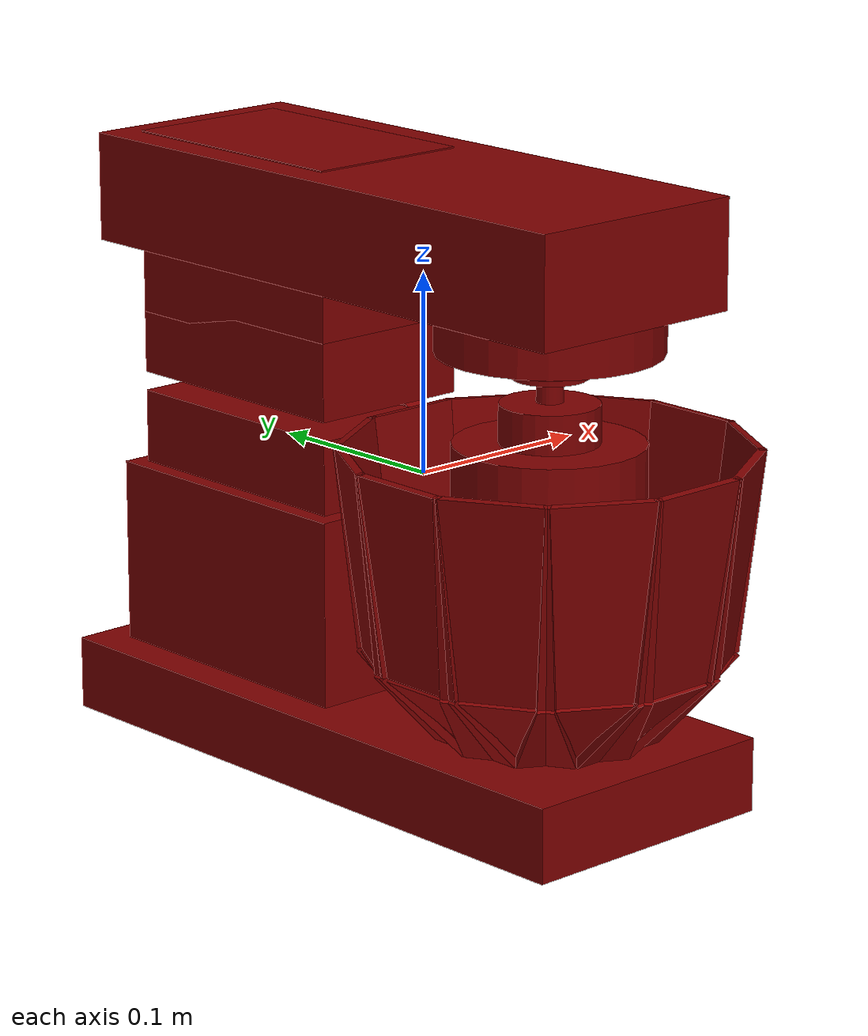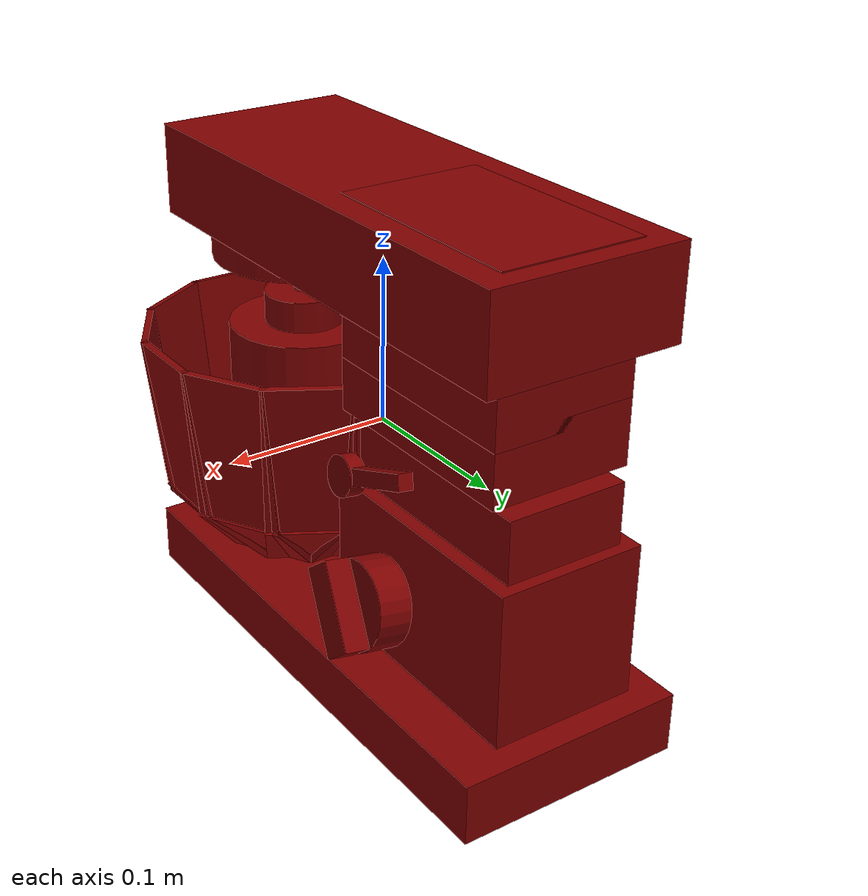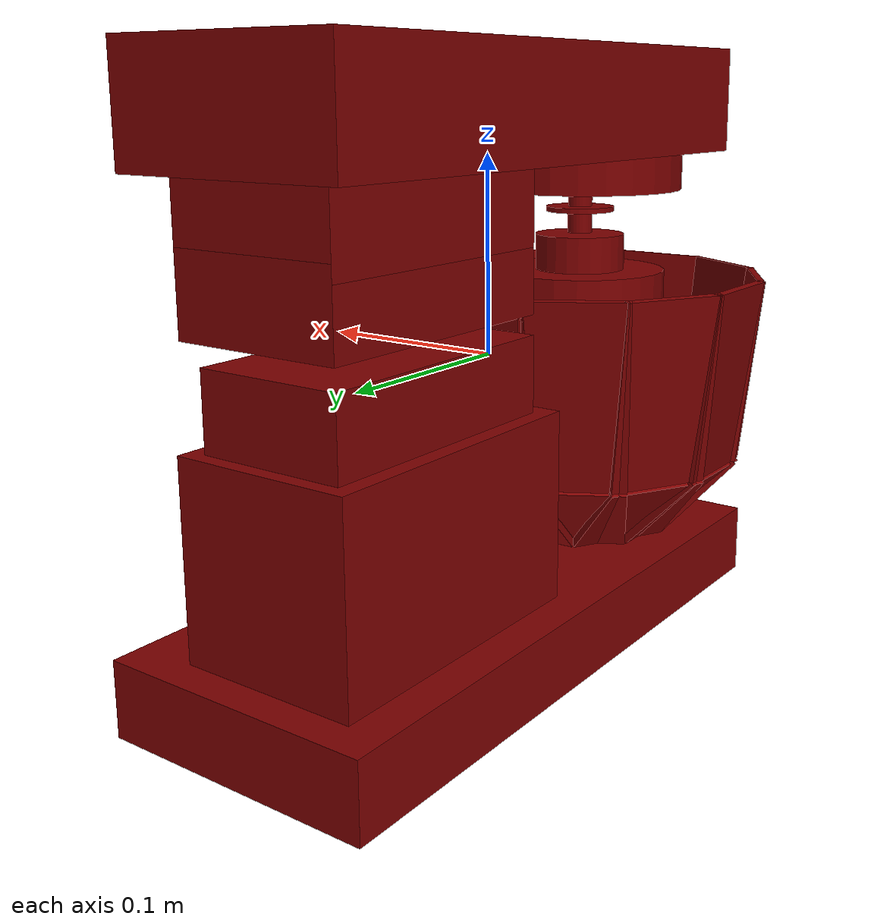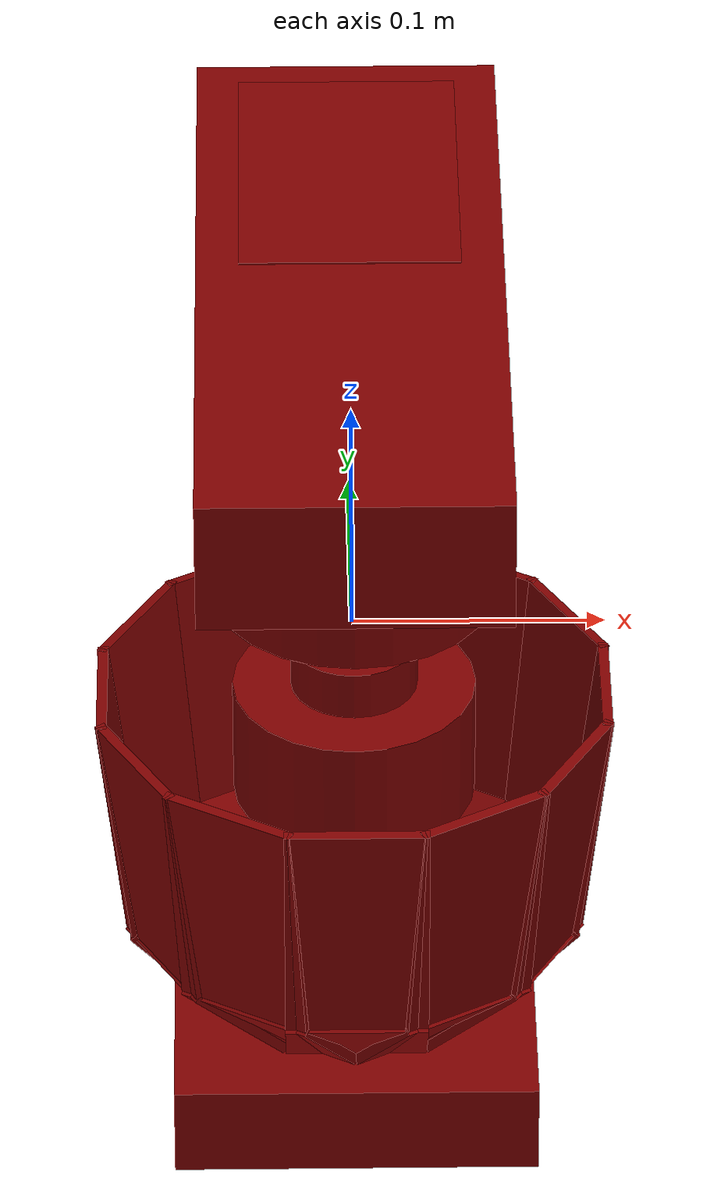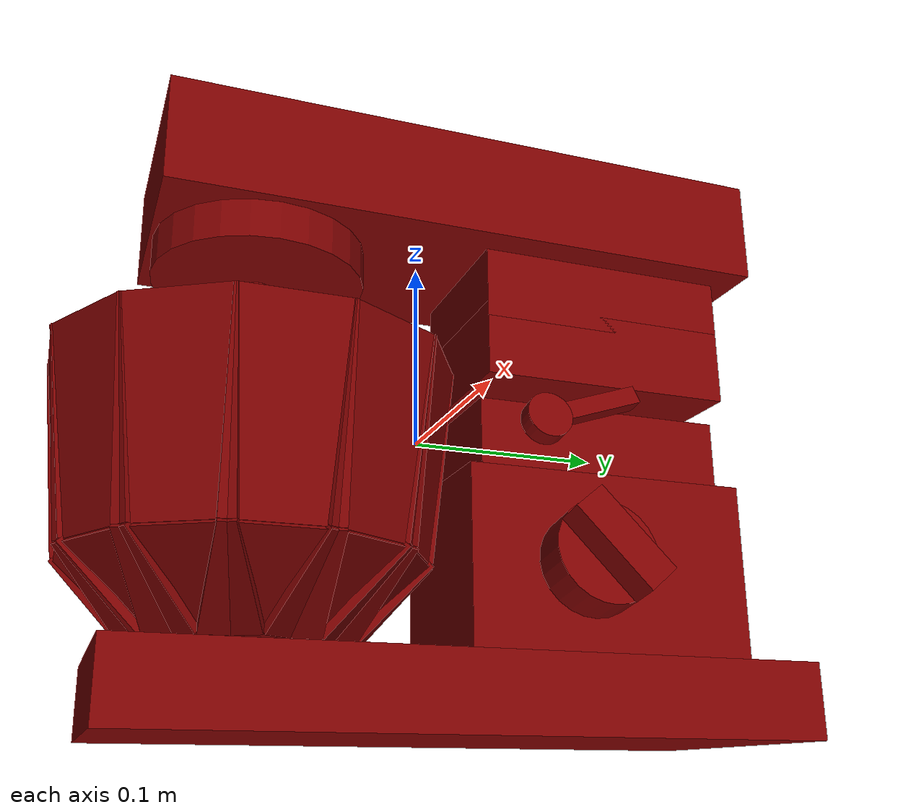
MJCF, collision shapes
<?xml version='1.0' encoding='UTF-8'?>
<mujoco model="model">
  <compiler angle="radian"/>
  <asset>
    <mesh file="visuals/Blender001.obj" name="Blender001_vis"/>
    <mesh file="visuals/Body001.obj" name="Body001_vis"/>
    <mesh file="visuals/Container001.obj" name="Container001_vis"/>
    <mesh file="visuals/Konb001.obj" name="Konb001_vis"/>
    <mesh file="visuals/Lever001.obj" name="Lever001_vis"/>
    <mesh file="visuals/Lid001.obj" name="Lid001_vis"/>
    <texture file="visuals/T_BC001.png" name="Body001_material" type="2d"/>
    <material name="Body001_material" rgba="1 1 1 1.0" texture="Body001_material" shininess="0.4472135901451111" specular="0.6"/>
    <texture file="visuals/T_BC001.png" name="Container001_material" type="2d"/>
    <material name="Container001_material" rgba="1 1 1 1.0" texture="Container001_material" shininess="0.4472135901451111" specular="0.8"/>
    <texture file="visuals/T_BC001.png" name="Konb001_material" type="2d"/>
    <material name="Konb001_material" rgba="1 1 1 1.0" texture="Konb001_material" shininess="0.4472135901451111" specular="0.8"/>
    <texture file="visuals/T_BC001.png" name="Lever001_material" type="2d"/>
    <material name="Lever001_material" rgba="1 1 1 1.0" texture="Lever001_material" shininess="0.4472135901451111" specular="0.8"/>
    <texture file="visuals/T_BC001.png" name="Lid001_material" type="2d"/>
    <material name="Lid001_material" rgba="1 1 1 1.0" texture="Lid001_material" shininess="0.4472135901451111" specular="0.3103448502657381"/>
    <texture file="visuals/T_BC001.png" name="Blender001_material" type="2d"/>
    <material name="Blender001_material" rgba="1 1 1 1.0" texture="Blender001_material" shininess="0.4472135901451111" specular="1"/>
  </asset>
  <default>
    <default class="visual">
      <geom conaffinity="0" contype="0" group="1" type="mesh"/>
    </default>
    <default class="collision">
      <geom group="0" rgba="0.5 0 0 0.5"/>
    </default>
    <default class="spawn">
      <geom group="0" rgba="1 1 1 0.5" contype="0" conaffinity="0"/>
      <site group="0" rgba="1 1 1 0.5"/>
    </default>
    <default class="region">
      <geom group="1" conaffinity="0" contype="0" rgba="0 1 0 0"/>
    </default>
  </default>
  <worldbody>
    <body>
      <body name="object">
        <geom mesh="Body001_vis" type="mesh" solimp="0.998 0.998 0.001" solref="0.001 1" density="100" friction="0.95 0.3 0.1" class="visual" material="Body001_material"/>
        <geom class="collision" type="box" pos="5.073845386505127e-06 0.013375680893659592 -0.13134357333183289" size="0.07056957483291626 0.16979755461215973 0.01855016127228737" quat="1.0 0.0 0.0 0.0"/>
        <geom class="collision" type="box" pos="-0.005887225735932589 0.09084387868642807 -0.06559009104967117" size="0.04578365013003349 0.07607658207416534 0.04703680798411369" quat="1.0 0.0 0.0 0.0"/>
        <geom class="collision" type="box" pos="-0.005887224804610014 0.09195831418037415 -0.00040517188608646393" size="0.037225399166345596 0.06769412755966187 0.019153527915477753" quat="1.0 0.0 0.0 0.0"/>
        <body name="Container001">
          <joint axis="0.0 0.0 1.0" pos="-7.450580596923828e-09 -0.08097703009843826 -0.04038115590810776" limited="true" name="Container001_joint" range="0.0 0.035" type="slide" damping="1" frictionloss="1" armature=".01" stiffness="0.05"/>
          <geom mesh="Container001_vis" type="mesh" solimp="0.998 0.998 0.001" solref="0.001 1" density="100" friction="0.95 0.3 0.1" class="visual" material="Container001_material"/>
          <geom class="collision" type="cylinder" pos="5.066394805908203e-06 -0.08725181967020035 -0.10817986726760864" size="0.0464482381939888 0.0017479010857641697" quat="7.549790126404332e-08 0.0 0.0 1.0"/>
          <geom class="collision" type="box" pos="5.073733063909458e-06 -0.15343552827835083 -0.0882730558514595" size="0.027358751744031906 0.0020164165180176497 0.027878670021891594" quat="6.998173773808958e-08 -2.8328244638942124e-08 -0.9269362092018127 -0.3752189874649048"/>
          <geom class="collision" type="box" pos="5.073733063909458e-06 -0.17774909734725952 -0.018456988036632538" size="0.027358751744031906 0.002016416285187006 0.04990223050117493" quat="7.536473134450716e-08 -4.482206605871397e-09 -0.9982361197471619 -0.05936862528324127"/>
          <geom class="collision" type="box" pos="-0.03308677673339844 -0.14456859230995178 -0.0882730558514595" size="0.027358751744031906 0.002016416285187006 0.027878668159246445" quat="0.09711387753486633 0.23990875482559204 0.8953516483306885 0.36243361234664917"/>
          <geom class="collision" type="box" pos="-0.04524356871843338 -0.16562476754188538 -0.018456988036632538" size="0.027358751744031906 0.002016416285187006 0.04990223050117493" quat="-0.015365572646260262 -0.2583625316619873 -0.9642220735549927 -0.05734538659453392"/>
          <geom class="collision" type="box" pos="-0.05731169134378433 -0.12034367024898529 -0.0882730558514595" size="0.027358751744031906 0.002016416285187006 0.027878666296601295" quat="0.18760931491851807 0.46346813440322876 0.8027503490447998 0.3249490261077881"/>
          <geom class="collision" type="box" pos="-0.07836788147687912 -0.13250046968460083 -0.018456995487213135" size="0.027358751744031906 0.002016416285187006 0.04990223050117493" quat="-0.02968408726155758 -0.4991180896759033 -0.8644978404045105 -0.05141449719667435"/>
          <geom class="collision" type="box" pos="-0.06617863476276398 -0.08725183457136154 -0.0882730558514595" size="0.027358751744031906 0.002016416285187006 0.027878666296601295" quat="0.2653197944164276 0.6554428935050964 0.6554428935050964 0.2653198540210724"/>
          <geom class="collision" type="box" pos="-0.09049221873283386 -0.08725183457136154 -0.018456988036632538" size="0.027358751744031906 0.0020164165180176497 0.04990223050117493" quat="0.041979771107435226 0.7058594822883606 0.7058596014976501 0.04197971895337105"/>
          <geom class="collision" type="box" pos="-0.057311706244945526 -0.0541599877178669 -0.0882730558514595" size="0.027358751744031906 0.002016416285187006 0.027878666296601295" quat="0.32494908571243286 0.8027502298355103 0.4634682834148407 0.1876094490289688"/>
          <geom class="collision" type="box" pos="-0.07836788892745972 -0.04200320318341255 -0.018456988036632538" size="0.027358751744031906 0.002016416285187006 0.04990223050117493" quat="0.05141449719667435 0.8644978404045105 0.4991181492805481 0.02968413010239601"/>
          <geom class="collision" type="box" pos="-0.03308679163455963 -0.029935061931610107 -0.0882730558514595" size="0.027358751744031906 0.0020164165180176497 0.027878668159246445" quat="0.3624334931373596 0.8953516483306885 0.239908829331398 0.09711384028196335"/>
          <geom class="collision" type="box" pos="-0.04524358734488487 -0.00887887179851532 -0.018456995487213135" size="0.027358751744031906 0.002016416285187006 0.04990223050117493" quat="0.05734540894627571 0.9642220735549927 0.2583625614643097 0.01536561269313097"/>
          <geom class="collision" type="box" pos="5.049063020123867e-06 -0.021068118512630463 -0.0882730558514595" size="0.027358751744031906 0.002016416285187006 0.027878666296601295" quat="0.37521877884864807 0.9269362688064575 5.358042187708634e-08 6.884591385869498e-08"/>
          <geom class="collision" type="box" pos="5.045391844760161e-06 0.0032454654574394226 -0.018456988036632538" size="0.027358751744031906 0.002016416285187006 0.04990223050117493" quat="0.05936868488788605 0.9982361197471619 7.276963742697262e-08 4.8116497453065676e-08"/>
          <geom class="collision" type="box" pos="0.033096909523010254 -0.029935050755739212 -0.0882730558514595" size="0.027358751744031906 0.0020164165180176497 0.027878668159246445" quat="0.3624334931373596 0.8953516483306885 -0.239908829331398 -0.09711384028196335"/>
          <geom class="collision" type="box" pos="0.0452537015080452 -0.008878879249095917 -0.018456988036632538" size="0.027358751744031906 0.002016416285187006 0.04990223050117493" quat="0.05734540894627571 0.9642220735549927 -0.2583625614643097 -0.015365613624453545"/>
          <geom class="collision" type="box" pos="0.057321831583976746 -0.054159972816705704 -0.0882730558514595" size="0.027358751744031906 0.002016416285187006 0.027878668159246445" quat="0.3249489367008209 0.8027502298355103 -0.46346840262413025 -0.18760946393013"/>
          <geom class="collision" type="box" pos="0.07837801426649094 -0.04200318083167076 -0.018456995487213135" size="0.027358751744031906 0.002016416285187006 0.04990223050117493" quat="0.05141449719667435 0.8644978404045105 -0.4991181492805481 -0.02968413010239601"/>
          <geom class="collision" type="box" pos="0.0661887675523758 -0.08725181221961975 -0.0882730558514595" size="0.027358751744031906 0.002016416285187006 0.027878666296601295" quat="0.2653197944164276 0.6554428935050964 -0.6554428935050964 -0.2653198540210724"/>
          <geom class="collision" type="box" pos="0.09050235152244568 -0.08725181221961975 -0.018456988036632538" size="0.027358751744031906 0.0020164165180176497 0.04990223050117493" quat="0.041979771107435226 0.7058594822883606 -0.7058596014976501 -0.04197971895337105"/>
          <geom class="collision" type="box" pos="0.057321835309267044 -0.1203436553478241 -0.0882730558514595" size="0.027358751744031906 0.002016416285187006 0.027878666296601295" quat="0.18760941922664642 0.4634682238101959 -0.802750289440155 -0.32494911551475525"/>
          <geom class="collision" type="box" pos="0.07837801426649094 -0.13250043988227844 -0.018456995487213135" size="0.027358751744031906 0.002016416285187006 0.04990223050117493" quat="-0.02968408353626728 -0.4991181492805481 0.8644978404045105 0.05141448602080345"/>
          <geom class="collision" type="box" pos="0.033096905797719955 -0.14456859230995178 -0.0882730558514595" size="0.027358755469322205 0.0020164165180176497 0.027878668159246445" quat="0.09711378812789917 0.2399086058139801 -0.8953517079353333 -0.3624335527420044"/>
          <geom class="collision" type="box" pos="0.0452536940574646 -0.16562476754188538 -0.018456995487213135" size="0.027358753606677055 0.002016416285187006 0.04990223050117493" quat="0.01536570955067873 0.258362352848053 -0.9642221331596375 -0.05734535679221153"/>
        </body>
        <body name="Konb001">
          <joint axis="-0.9862951636314392 0.0 -0.1649911105632782" pos="0.05769357457756996 0.07274851202964783 -0.06667506694793701" limited="true" name="Konb001_joint" range="0.0 3.0543261909900767" type="hinge" damping="1" frictionloss="1" armature=".01" stiffness="0.05"/>
          <geom mesh="Konb001_vis" type="mesh" solimp="0.998 0.998 0.001" solref="0.001 1" density="100" friction="0.95 0.3 0.1" class="visual" material="Konb001_material"/>
          <geom class="collision" type="cylinder" pos="0.05795777589082718 0.07274851202964783 -0.06654687225818634" size="0.026588069275021553 0.010307710617780685" quat="0.7660444378852844 -4.3182243558703703e-08 0.6427876353263855 3.4901962209232806e-08"/>
          <geom class="collision" type="box" pos="0.07732999324798584 0.07274755835533142 -0.06316711008548737" size="0.00778769887983799 0.009430400095880032 0.02553301304578781" quat="0.9379123449325562 0.3328332006931305 -0.09194263815879822 0.033000338822603226"/>
        </body>
        <body name="Lever001">
          <joint axis="-0.9848235845565796 0.0 -0.17355889081954956" pos="0.06283474713563919 0.04864196851849556 0.0029252218082547188" limited="true" name="Lever001_joint" range="0.0 0.7853981633974483" type="hinge" damping="1" frictionloss="5" armature=".01" stiffness="0" springref="0"/>
          <geom mesh="Lever001_vis" type="mesh" solimp="0.998 0.998 0.001" solref="0.001 1" density="100" friction="0.95 0.3 0.1" class="visual" material="Lever001_material"/>
          <geom class="collision" type="cylinder" pos="0.0562073178589344 0.048545051366090775 0.0018812189809978008" size="0.011901753023266792 0.0049078515730798244" quat="0.5284447073936462 -0.4458100497722626 -0.6163422465324402 0.37699049711227417"/>
          <geom class="collision" type="box" pos="0.05370982363820076 0.07828723639249802 0.012396917678415775" size="0.004682561848312616 0.022244270890951157 0.004682561848312616" quat="0.9826816916465759 0.16859455406665802 -0.07516278326511383 0.016221465542912483"/>
        </body>
        <body name="Lid001">
          <joint axis="-1.0 0.0 0.0" pos="5.7140562148561e-07 0.16126641631126404 0.024709684774279594" limited="true" name="Lid001_joint" range="0.0 1.5707963267948966" type="hinge" damping="1" frictionloss="1" armature=".01" stiffness="0.05"/>
          <geom mesh="Lid001_vis" type="mesh" solimp="0.998 0.998 0.001" solref="0.001 1" density="100" friction="0.95 0.3 0.1" class="visual" material="Lid001_material"/>
          <geom class="collision" type="box" pos="5.073845386505127e-06 0.09217700362205505 0.10592108964920044" size="0.04311765730381012 0.06769410520792007 0.046253502368927" quat="1.0 0.0 0.0 0.0"/>
          <geom class="collision" type="box" pos="5.073845386505127e-06 0.014708846807479858 0.12418593466281891" size="0.05965360626578331 0.15832160413265228 0.027248049154877663" quat="1.0 0.0 0.0 0.0"/>
          <geom class="collision" type="box" pos="5.073845386505127e-06 0.09217700362205505 0.0479249432682991" size="0.04311765730381012 0.06769412755966187 0.01956850104033947" quat="1.0 0.0 0.0 0.0"/>
          <geom class="collision" type="cylinder" pos="5.073845386505127e-06 -0.08695147931575775 0.08893030136823654" size="0.054843828082084656 0.011555799283087254" quat="1.0 0.0 0.0 0.0"/>
          <body name="Blender001">
            <joint axis="0.0 0.0 1.0" pos="1.3541430234909058e-06 -0.08097606897354126 0.007848892360925674" limited="false" name="Blender001_joint" range="0 360" type="hinge" damping="1" frictionloss="1" armature=".01" stiffness="0.05"/>
            <geom mesh="Blender001_vis" type="mesh" solimp="0.998 0.998 0.001" solref="0.001 1" density="100" friction="0.95 0.3 0.1" class="visual" material="Blender001_material"/>
            <geom class="collision" type="cylinder" pos="6.427988409996033e-06 -0.08725085854530334 0.009146001189947128" size="0.04660256952047348 0.024174952879548073" quat="1.0 0.0 0.0 0.0"/>
            <geom class="collision" type="cylinder" pos="6.427988409996033e-06 -0.08725085854530334 -0.035879235714673996" size="0.03096526861190796 0.021607886999845505" quat="1.0 0.0 0.0 0.0"/>
            <geom class="collision" type="cylinder" pos="6.427988409996033e-06 -0.08725085854530334 0.04285428673028946" size="0.024344278499484062 0.009810916148126125" quat="1.0 0.0 0.0 0.0"/>
            <geom class="collision" type="cylinder" pos="6.427988409996033e-06 -0.08725085854530334 0.06494736671447754" size="0.006610231939703226 0.011693627573549747" quat="1.0 0.0 0.0 0.0"/>
            <geom class="collision" type="cylinder" pos="6.427988409996033e-06 -0.08725085854530334 0.06630212068557739" size="0.018412040546536446 0.0013846845831722021" quat="1.0 0.0 0.0 0.0"/>
          </body>
        </body>
        <geom class="region" name="reg_main" type="box" pos="5.623325705528259e-06 0.01275847852230072 0.0" size="0.07000000774860382 0.16987170279026031 0.14959827065467834"/>
      </body>
    </body>
  </worldbody>
  <actuator>
    <motor name="Container001_joint_actuator" joint="Container001_joint" gear="10"/>
    <motor name="Konb001_joint_actuator" joint="Konb001_joint" gear="10"/>
    <motor name="Lever001_joint_actuator" joint="Lever001_joint" gear="0.05"/>
    <motor name="Lid001_joint_actuator" joint="Lid001_joint" gear="10"/>
    <motor name="Blender001_joint_actuator" joint="Blender001_joint" gear="10"/>
  </actuator>
</mujoco>
